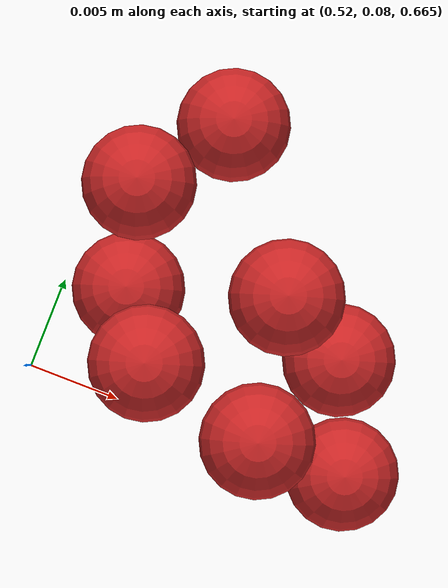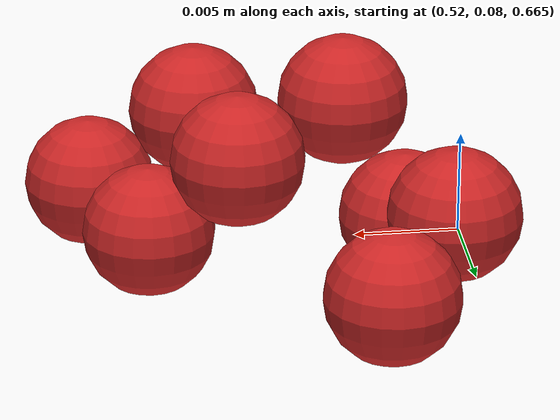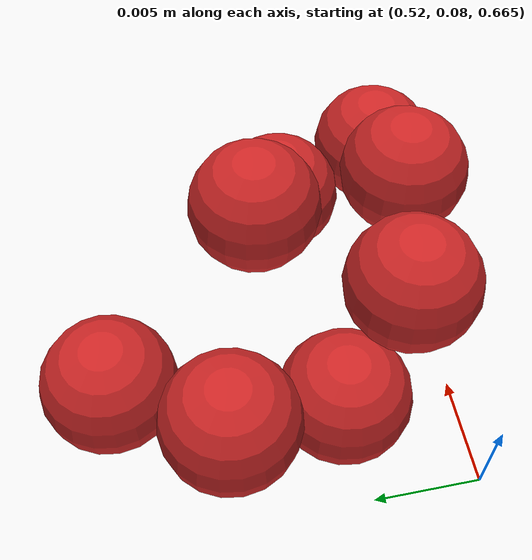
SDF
<sdf version="1.4">
 <world name="default">
  <model name="ground_plane">
   <static>1</static>
   <link name="link">
    <collision name="collision">
     <geometry><plane><normal>0 0 1</normal><size>100 100</size></plane></geometry>
     <surface><friction><ode><mu>100</mu><mu2>50</mu2></ode></friction></surface>
    </collision>
    <visual name="visual">
     <cast_shadows>0</cast_shadows>
     <geometry><plane><normal>0 0 1</normal><size>100 100</size></plane></geometry>
     <material>
      <script><uri>file://media/materials/scripts/gazebo.material</uri><name>Gazebo/Grey</name></script>
     </material>
    </visual>
    <velocity_decay><linear>0</linear><angular>0</angular></velocity_decay>
   </link>
  </model>
  <model name="sphere28">
   <pose>-0.011848 0.006001 -0.030007 0.000122 -0.000795 -0.000744</pose>
   <link name="link">
    <pose>0.534545 0.085517 0.700885 0 -0 0</pose>
    <inertial>
     <mass>1e-08</mass>
     <inertia><ixx>4e-08</ixx><ixy>0</ixy><ixz>0</ixz><iyy>4e-08</iyy><iyz>0</iyz><izz>4e-08</izz></inertia>
    </inertial>
    <collision name="collision">
     <surface>
      <bounce><restitution_coefficient>0.5</restitution_coefficient><threshold>0</threshold></bounce>
      <contact><ode><kp>1e+08</kp><kd>1</kd></ode></contact>
      <friction><ode><mu>1e-06</mu><mu2>1e-06</mu2></ode></friction>
     </surface>
     <geometry><sphere><radius>0.003</radius></sphere></geometry>
    </collision>
    <visual name="visual">
     <geometry><sphere><radius>0.003</radius></sphere></geometry>
     <material>
      <script><uri>file://media/materials/scripts/gazebo.material</uri><name>Gazebo/Red</name></script>
     </material>
    </visual>
    <velocity_decay><linear>0</linear><angular>0</angular></velocity_decay>
   </link>
   <static>0</static>
  </model>
  <model name="sphere37">
   <pose>-0.002943 0.00741 -0.037958 0.000232 -5e-06 0</pose>
   <link name="link">
    <pose>0.540545 0.073517 0.706885 0 -0 0</pose>
    <inertial>
     <mass>1e-08</mass>
     <inertia><ixx>4e-08</ixx><ixy>0</ixy><ixz>0</ixz><iyy>4e-08</iyy><iyz>0</iyz><izz>4e-08</izz></inertia>
    </inertial>
    <collision name="collision">
     <surface>
      <bounce><restitution_coefficient>0.5</restitution_coefficient><threshold>0</threshold></bounce>
      <contact><ode><kp>1e+08</kp><kd>1</kd></ode></contact>
      <friction><ode><mu>1e-06</mu><mu2>1e-06</mu2></ode></friction>
     </surface>
     <geometry><sphere><radius>0.003</radius></sphere></geometry>
    </collision>
    <visual name="visual">
     <geometry><sphere><radius>0.003</radius></sphere></geometry>
     <material>
      <script><uri>file://media/materials/scripts/gazebo.material</uri><name>Gazebo/Red</name></script>
     </material>
    </visual>
    <velocity_decay><linear>0</linear><angular>0</angular></velocity_decay>
   </link>
   <static>0</static>
  </model>
  <model name="sphere40">
   <pose>-0.01088 0.006257 -0.038131 -5e-06 -0.000125 -2.5e-05</pose>
   <link name="link">
    <pose>0.534545 0.079517 0.706885 0 -0 0</pose>
    <inertial>
     <mass>1e-08</mass>
     <inertia><ixx>4e-08</ixx><ixy>0</ixy><ixz>0</ixz><iyy>4e-08</iyy><iyz>0</iyz><izz>4e-08</izz></inertia>
    </inertial>
    <collision name="collision">
     <surface>
      <bounce><restitution_coefficient>0.5</restitution_coefficient><threshold>0</threshold></bounce>
      <contact><ode><kp>1e+08</kp><kd>1</kd></ode></contact>
      <friction><ode><mu>1e-06</mu><mu2>1e-06</mu2></ode></friction>
     </surface>
     <geometry><sphere><radius>0.003</radius></sphere></geometry>
    </collision>
    <visual name="visual">
     <geometry><sphere><radius>0.003</radius></sphere></geometry>
     <material>
      <script><uri>file://media/materials/scripts/gazebo.material</uri><name>Gazebo/Red</name></script>
     </material>
    </visual>
    <velocity_decay><linear>0</linear><angular>0</angular></velocity_decay>
   </link>
   <static>0</static>
  </model>
  <model name="sphere57">
   <pose>-0.00525 0.006755 -0.043956 -2.7e-05 -4.1e-05 0</pose>
   <link name="link">
    <pose>0.540545 0.079517 0.712885 0 -0 0</pose>
    <inertial>
     <mass>1e-08</mass>
     <inertia><ixx>4e-08</ixx><ixy>0</ixy><ixz>0</ixz><iyy>4e-08</iyy><iyz>0</iyz><izz>4e-08</izz></inertia>
    </inertial>
    <collision name="collision">
     <surface>
      <bounce><restitution_coefficient>0.5</restitution_coefficient><threshold>0</threshold></bounce>
      <contact><ode><kp>1e+08</kp><kd>1</kd></ode></contact>
      <friction><ode><mu>1e-06</mu><mu2>1e-06</mu2></ode></friction>
     </surface>
     <geometry><sphere><radius>0.003</radius></sphere></geometry>
    </collision>
    <visual name="visual">
     <geometry><sphere><radius>0.003</radius></sphere></geometry>
     <material>
      <script><uri>file://media/materials/scripts/gazebo.material</uri><name>Gazebo/Red</name></script>
     </material>
    </visual>
    <velocity_decay><linear>0</linear><angular>0</angular></velocity_decay>
   </link>
   <static>0</static>
  </model>
  <model name="sphere60">
   <pose>-0.009061 0.010217 -0.042905 0.000151 0.000221 0.00019</pose>
   <link name="link">
    <pose>0.534545 0.085517 0.712885 0 -0 0</pose>
    <inertial>
     <mass>1e-08</mass>
     <inertia><ixx>4e-08</ixx><ixy>0</ixy><ixz>0</ixz><iyy>4e-08</iyy><iyz>0</iyz><izz>4e-08</izz></inertia>
    </inertial>
    <collision name="collision">
     <surface>
      <bounce><restitution_coefficient>0.5</restitution_coefficient><threshold>0</threshold></bounce>
      <contact><ode><kp>1e+08</kp><kd>1</kd></ode></contact>
      <friction><ode><mu>1e-06</mu><mu2>1e-06</mu2></ode></friction>
     </surface>
     <geometry><sphere><radius>0.003</radius></sphere></geometry>
    </collision>
    <visual name="visual">
     <geometry><sphere><radius>0.003</radius></sphere></geometry>
     <material>
      <script><uri>file://media/materials/scripts/gazebo.material</uri><name>Gazebo/Red</name></script>
     </material>
    </visual>
    <velocity_decay><linear>0</linear><angular>0</angular></velocity_decay>
   </link>
   <static>0</static>
  </model>
  <model name="sphere68">
   <pose>-0.008528 0.008992 -0.045628 0 -0 0</pose>
   <link name="link">
    <pose>0.534545 0.073517 0.718885 0 -0 0</pose>
    <inertial>
     <mass>1e-08</mass>
     <inertia><ixx>4e-08</ixx><ixy>0</ixy><ixz>0</ixz><iyy>4e-08</iyy><iyz>0</iyz><izz>4e-08</izz></inertia>
    </inertial>
    <collision name="collision">
     <surface>
      <bounce><restitution_coefficient>0.5</restitution_coefficient><threshold>0</threshold></bounce>
      <contact><ode><kp>1e+08</kp><kd>1</kd></ode></contact>
      <friction><ode><mu>1e-06</mu><mu2>1e-06</mu2></ode></friction>
     </surface>
     <geometry><sphere><radius>0.003</radius></sphere></geometry>
    </collision>
    <visual name="visual">
     <geometry><sphere><radius>0.003</radius></sphere></geometry>
     <material>
      <script><uri>file://media/materials/scripts/gazebo.material</uri><name>Gazebo/Red</name></script>
     </material>
    </visual>
    <velocity_decay><linear>0</linear><angular>0</angular></velocity_decay>
   </link>
   <static>0</static>
  </model>
  <model name="sphere72">
   <pose>-0.003103 0.008701 -0.045754 0 -0 0</pose>
   <link name="link">
    <pose>0.534545 0.079517 0.718885 0 -0 0</pose>
    <inertial>
     <mass>1e-08</mass>
     <inertia><ixx>4e-08</ixx><ixy>0</ixy><ixz>0</ixz><iyy>4e-08</iyy><iyz>0</iyz><izz>4e-08</izz></inertia>
    </inertial>
    <collision name="collision">
     <surface>
      <bounce><restitution_coefficient>0.5</restitution_coefficient><threshold>0</threshold></bounce>
      <contact><ode><kp>1e+08</kp><kd>1</kd></ode></contact>
      <friction><ode><mu>1e-06</mu><mu2>1e-06</mu2></ode></friction>
     </surface>
     <geometry><sphere><radius>0.003</radius></sphere></geometry>
    </collision>
    <visual name="visual">
     <geometry><sphere><radius>0.003</radius></sphere></geometry>
     <material>
      <script><uri>file://media/materials/scripts/gazebo.material</uri><name>Gazebo/Red</name></script>
     </material>
    </visual>
    <velocity_decay><linear>0</linear><angular>0</angular></velocity_decay>
   </link>
   <static>0</static>
  </model>
  <model name="sphere84">
   <pose>-0.001827 0.007341 -0.052483 0 -0 0</pose>
   <link name="link">
    <pose>0.534545 0.073517 0.724885 0 -0 0</pose>
    <inertial>
     <mass>1e-08</mass>
     <inertia><ixx>4e-08</ixx><ixy>0</ixy><ixz>0</ixz><iyy>4e-08</iyy><iyz>0</iyz><izz>4e-08</izz></inertia>
    </inertial>
    <collision name="collision">
     <surface>
      <bounce><restitution_coefficient>0.5</restitution_coefficient><threshold>0</threshold></bounce>
      <contact><ode><kp>1e+08</kp><kd>1</kd></ode></contact>
      <friction><ode><mu>1e-06</mu><mu2>1e-06</mu2></ode></friction>
     </surface>
     <geometry><sphere><radius>0.003</radius></sphere></geometry>
    </collision>
    <visual name="visual">
     <geometry><sphere><radius>0.003</radius></sphere></geometry>
     <material>
      <script><uri>file://media/materials/scripts/gazebo.material</uri><name>Gazebo/Red</name></script>
     </material>
    </visual>
    <velocity_decay><linear>0</linear><angular>0</angular></velocity_decay>
   </link>
   <static>0</static>
  </model>
 </world>
</sdf>
